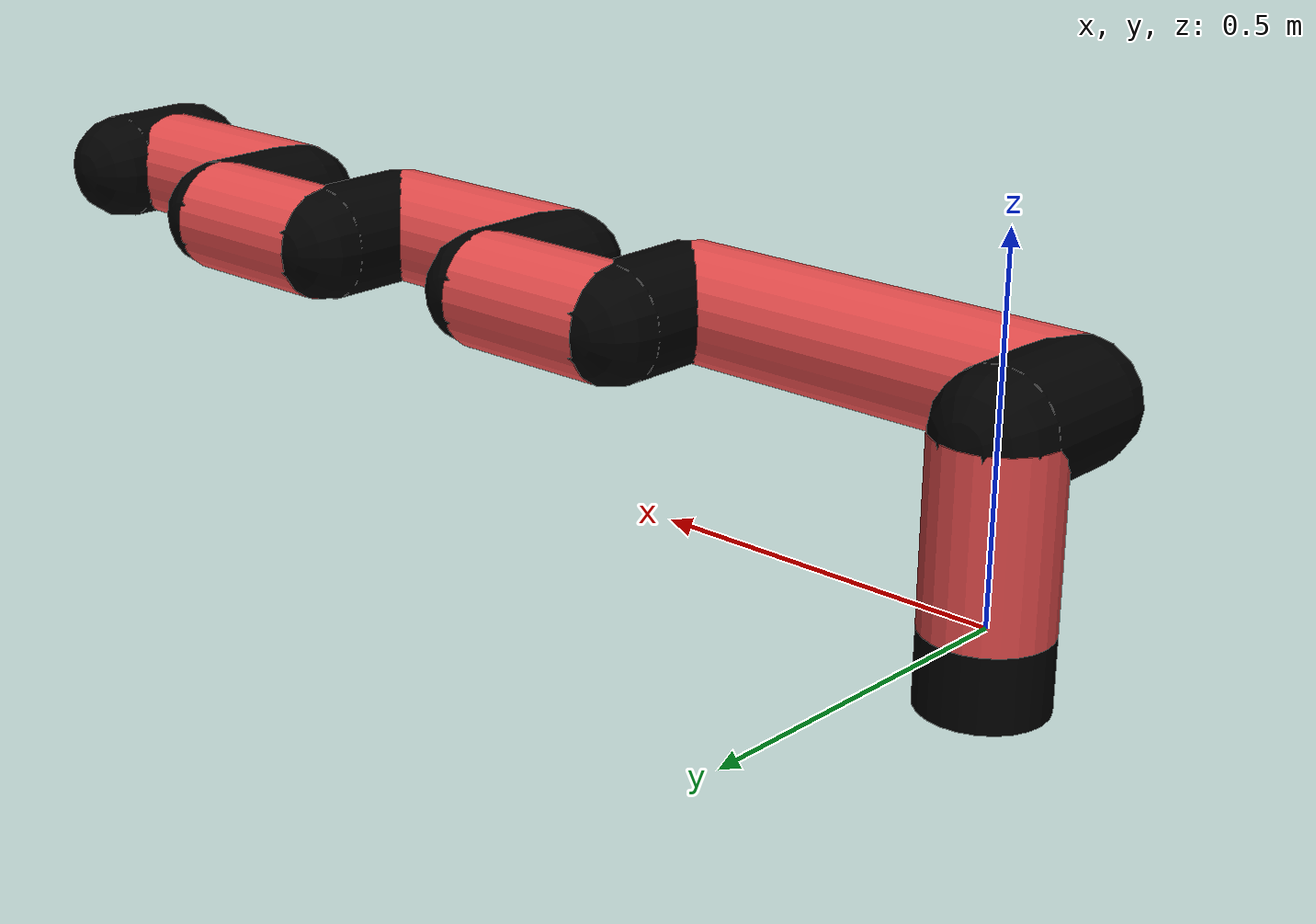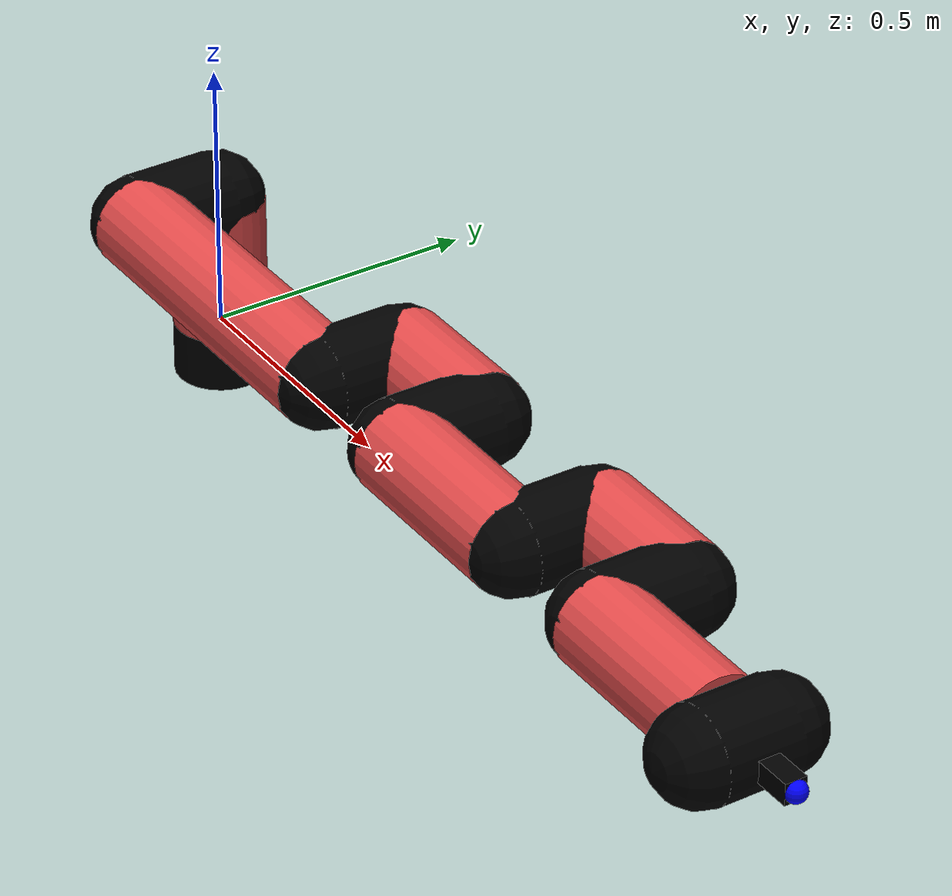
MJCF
<mujoco model="manipulator">
		<compiler angle="degree" coordinate="local" inertiafromgeom="auto" meshdir="meshes/"/>
		<option gravity="0 0 0" integrator="RK4" iterations="30" timestep="0.01"/>

		<default>
		<joint armature="1" limited="true" stiffness="10" damping="15" frictionloss="5.0"/>
		<geom conaffinity="1" condim="3" contype="1" friction=".5 .1 .1" margin="0.002"/>
		<motor ctrllimited="true"/>
		<position ctrllimited="true"/>
		</default>

		<asset>
		<texture builtin="gradient" height="100" rgb1="1.0 1.0 1.0" rgb2="1.0 1.0 1.0" type="skybox" width="100"/>
		<texture builtin="flat" height="32" name="arm_tex" rgb1="0.9 0.3 0.3" type="2d" width="32"/>
		<texture builtin="flat" height="32" name="gripper_tex" rgb1="0.0 0.0 0.0" type="cube" width="32"/>

		<material name="arm_mat" shininess="0.1" specular="0.1" texture="arm_tex"/>
		<material name="gripper_mat" shininess="1" specular="1" texture="gripper_tex"/>
		</asset>

		<worldbody>
		<light cutoff="45" diffuse=".8 .8 .8" dir="0 0.16 -1" directional="false" name="light" pos="0 -2.0 8.0" specular="0.3 0.3 0.3"/>

		<body name="base_link" pos="0 0 -0.1">
		<geom fromto="0 0 0 0 0 0.1" material="arm_mat" name="base_link" rgba="0.0 0.0 0.0 1" size="0.085" type="cylinder"/>
		</body>

		<body name="l1" pos="0 0 0">
<geom fromto="0 0 0 0 0 0.25" material="arm_mat" name="l1" rgba="0.9 0.3 0.3 1" size="0.085" type="cylinder"/>
<geom fromto="0 0 0.25 0 -0.16 0.25" material="arm_mat" name="l1_ex" rgba="0.0 0.0 0.0 1" size="0.085" type="capsule"/>
<joint axis="0 0 1" name="j1" pos="0 0 0" range="-90 90" damping="24.1" frictionloss="8.78"/>

<body name="l2" pos="0 -0.16 0.25">
<geom fromto="0 0 0 0.61 0 0" material="arm_mat" name="l2" rgba="0.9 0.3 0.3 1" size="0.085" type="cylinder"/>
<geom fromto="0.61 0 0 0.61 0.16 0" material="arm_mat" name="l2_ex" rgba="0.0 0.0 0.0 1" size="0.085" type="capsule"/>
<joint axis="0.0 1.0 0.0" name="j2" pos="0 0 0" range="-90 60" damping="31.08" frictionloss="10.0"/>

<body name="l3" pos="0.61 0.16 0">
<geom fromto="0 0 0 0.24 0 0" material="arm_mat" name="l3" rgba="0.9 0.3 0.3 1" size="0.085" type="cylinder"/>
<geom fromto="0.24 0 0 0.24 -0.16 0" material="arm_mat" name="l3_ex" rgba="0.0 0.0 0.0 1" size="0.085" type="capsule"/>
<joint axis="0.0 1.0 0.0" name="j3" pos="0 0 0" range="-30 60" damping="35.98" frictionloss="10.71"/>

<body name="l4" pos="0.24 -0.16 0">
<geom fromto="0 0 0 0.34 0 0" material="arm_mat" name="l4" rgba="0.9 0.3 0.3 1" size="0.085" type="cylinder"/>
<geom fromto="0.34 0 0 0.34 0.16 0" material="arm_mat" name="l4_ex" rgba="0.0 0.0 0.0 1" size="0.085" type="capsule"/>
<joint axis="0.0 1.0 0.0" name="j4" pos="0 0 0" range="-30 60" damping="25.12" frictionloss="10.46"/>

<body name="l5" pos="0.34 0.16 0">
<geom fromto="0 0 0 0.24 0 0" material="arm_mat" name="l5" rgba="0.9 0.3 0.3 1" size="0.085" type="cylinder"/>
<geom fromto="0.24 0 0 0.24 -0.16 0" material="arm_mat" name="l5_ex" rgba="0.0 0.0 0.0 1" size="0.085" type="capsule"/>
<joint axis="0.0 1.0 0.0" name="j5" pos="0 0 0" range="-30 60" damping="36.56" frictionloss="8.48"/>

<body name="l6" pos="0.24 -0.16 0">
<geom fromto="0 0 0 0.32 0 0" material="arm_mat" name="l6" rgba="0.9 0.3 0.3 1" size="0.085" type="cylinder"/>
<joint axis="0.0 1.0 0.0" name="j6" pos="0 0 0" range="-30 60" damping="26.55" frictionloss="7.97"/>

<body name="gripper" pos="0.32 0 0">
<geom fromto="0.05 -0.07 0 0.05 0.07 0" material="gripper_mat" name="gripper" rgba="0.0 0.0 0.0 1" size="0.085" type="capsule"/><joint axis="1 0 0" name="j7" pos="0 0 0" range="-90 90" damping="15" frictionloss="5.0"/><body name="finger" pos="0.1 0 0">
<geom fromto="0 0.0 0 0.1 0.0 0" material="gripper_mat" name="finger" rgba="0.0 0.0 0.0 1" size="0.020 0.06 0.06" type="box"/>
</body>
<site name="current" pos="0.2 0. 0.0" rgba="0. 0. 1.0 1" size="0.02" type="sphere"/>
</body>
</body>
</body>
</body>
</body>
</body>
</body>
</worldbody>
<actuator>
<motor ctrllimited="true" ctrlrange="-1.0 1.0" joint="j1" gear="86.17"/>
<motor ctrllimited="true" ctrlrange="-1.0 1.0" joint="j2" gear="96.88"/>
<motor ctrllimited="true" ctrlrange="-1.0 1.0" joint="j3" gear="69.44"/>
<motor ctrllimited="true" ctrlrange="-1.0 1.0" joint="j4" gear="78.4"/>
<motor ctrllimited="true" ctrlrange="-1.0 1.0" joint="j5" gear="74.62"/>
<motor ctrllimited="true" ctrlrange="-1.0 1.0" joint="j6" gear="72.01"/>
<motor ctrllimited="true" ctrlrange="-1.0 1.0" joint="j7" gear="80"/>
</actuator>
</mujoco>
